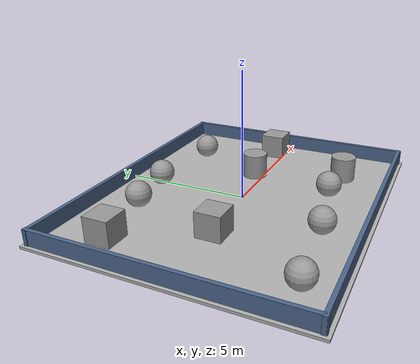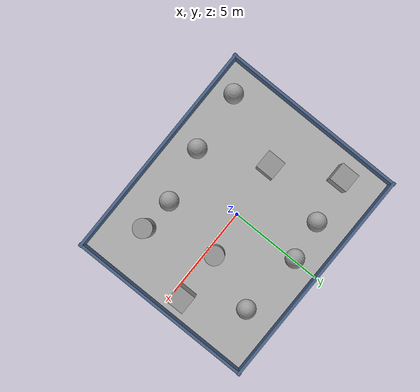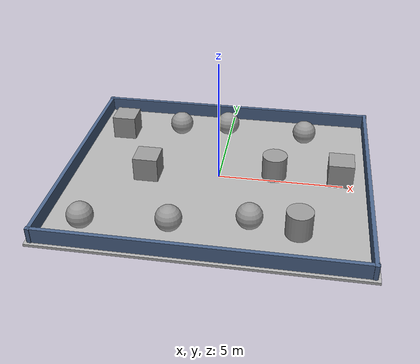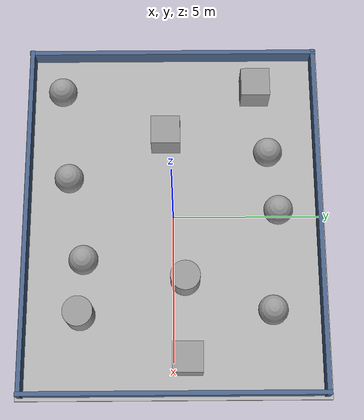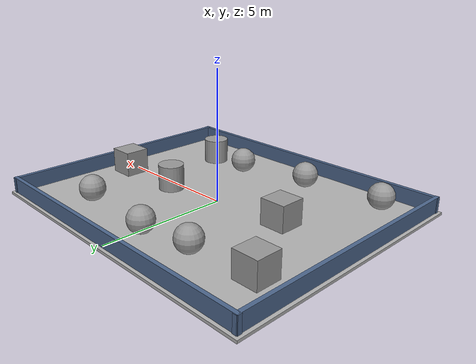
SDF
<sdf version="1.7">
 <world name="v550_custom">
  <gravity>0 0 -9.8</gravity>
  <physics type="ode">
   <max_step_size>0.001</max_step_size>
   <real_time_update_rate>1000</real_time_update_rate>
   <real_time_factor>1</real_time_factor>
  </physics>
  <scene><ambient>0.7 0.7 0.7 1</ambient><background>0.8 0.8 0.85 1</background><shadows>0</shadows></scene>
  <light name="sun" type="directional">
   <pose>0 0 10 0 -0 0</pose>
   <diffuse>0.9 0.9 0.9 1</diffuse>
   <specular>0.1 0.1 0.1 1</specular>
   <direction>-0.2 0.1 -1</direction>
   <cast_shadows>0</cast_shadows>
   <attenuation><range>10</range></attenuation>
   <spot><inner_angle>0</inner_angle><outer_angle>0</outer_angle><falloff>0</falloff></spot>
  </light>
  <model name="floor">
   <static>1</static>
   <pose>0 0 -0.05 0 -0 0</pose>
   <link name="link">
    <collision name="collision"><geometry><box><size>12.4 10.4 0.1</size></box></geometry></collision>
    <visual name="visual">
     <geometry><box><size>12.4 10.4 0.1</size></box></geometry>
     <material><ambient>0.65 0.65 0.65 1</ambient><diffuse>0.7 0.7 0.7 1</diffuse></material>
    </visual>
   </link>
  </model>
  <model name="wall_north">
   <static>1</static>
   <pose>0 5 0.3 0 -0 0</pose>
   <link name="link">
    <collision name="collision"><geometry><box><size>12.2 0.15 0.6</size></box></geometry></collision>
    <visual name="visual">
     <geometry><box><size>12.2 0.15 0.6</size></box></geometry>
     <material><ambient>0.3 0.4 0.55 1</ambient><diffuse>0.3 0.4 0.55 1</diffuse></material>
    </visual>
   </link>
  </model>
  <model name="wall_south">
   <static>1</static>
   <pose>0 -5 0.3 0 -0 0</pose>
   <link name="link">
    <collision name="collision"><geometry><box><size>12.2 0.15 0.6</size></box></geometry></collision>
    <visual name="visual">
     <geometry><box><size>12.2 0.15 0.6</size></box></geometry>
     <material><ambient>0.3 0.4 0.55 1</ambient><diffuse>0.3 0.4 0.55 1</diffuse></material>
    </visual>
   </link>
  </model>
  <model name="wall_east">
   <static>1</static>
   <pose>6 0 0.3 0 -0 0</pose>
   <link name="link">
    <collision name="collision"><geometry><box><size>0.15 10.2 0.6</size></box></geometry></collision>
    <visual name="visual">
     <geometry><box><size>0.15 10.2 0.6</size></box></geometry>
     <material><ambient>0.3 0.4 0.55 1</ambient><diffuse>0.3 0.4 0.55 1</diffuse></material>
    </visual>
   </link>
  </model>
  <model name="wall_west">
   <static>1</static>
   <pose>-6 0 0.3 0 -0 0</pose>
   <link name="link">
    <collision name="collision"><geometry><box><size>0.15 10.2 0.6</size></box></geometry></collision>
    <visual name="visual">
     <geometry><box><size>0.15 10.2 0.6</size></box></geometry>
     <material><ambient>0.3 0.4 0.55 1</ambient><diffuse>0.3 0.4 0.55 1</diffuse></material>
    </visual>
   </link>
  </model>
  <magnetic_field>6e-06 2.3e-05 -4.2e-05</magnetic_field>
  <atmosphere type="adiabatic"/>
  <audio><device>default</device></audio>
  <spherical_coordinates>
   <surface_model>EARTH_WGS84</surface_model>
   <latitude_deg>0</latitude_deg>
   <longitude_deg>0</longitude_deg>
   <elevation>0</elevation>
   <heading_deg>0</heading_deg>
  </spherical_coordinates>
  <model name="unit_cylinder">
   <pose>2.23343 0.399925 0.49999 -0 -0 -7.4e-05</pose>
   <link name="link">
    <inertial>
     <mass>1</mass>
     <inertia><ixx>0.145833</ixx><ixy>0</ixy><ixz>0</ixz><iyy>0.145833</iyy><iyz>0</iyz><izz>0.125</izz></inertia>
    </inertial>
    <collision name="collision">
     <geometry><cylinder><radius>0.5</radius><length>1</length></cylinder></geometry>
    </collision>
    <visual name="visual">
     <geometry><cylinder><radius>0.5</radius><length>1</length></cylinder></geometry>
     <material>
      <script><name>Gazebo/Grey</name><uri>file://media/materials/scripts/gazebo.material</uri></script>
     </material>
    </visual>
   </link>
  </model>
  <model name="unit_box">
   <pose>-2.88334 -0.25325 0.5 -0 -0 -0</pose>
   <link name="link">
    <inertial>
     <mass>1</mass>
     <inertia>
      <ixx>0.166667</ixx>
      <ixy>0</ixy>
      <ixz>0</ixz>
      <iyy>0.166667</iyy>
      <iyz>0</iyz>
      <izz>0.166667</izz>
     </inertia>
    </inertial>
    <collision name="collision"><geometry><box><size>1 1 1</size></box></geometry></collision>
    <visual name="visual">
     <geometry><box><size>1 1 1</size></box></geometry>
     <material>
      <script><name>Gazebo/Grey</name><uri>file://media/materials/scripts/gazebo.material</uri></script>
     </material>
    </visual>
   </link>
  </model>
  <model name="unit_sphere">
   <pose>-2.19903 3.27716 0.5 0 -0 0</pose>
   <link name="link">
    <inertial>
     <mass>1</mass>
     <inertia><ixx>0.1</ixx><ixy>0</ixy><ixz>0</ixz><iyy>0.1</iyy><iyz>0</iyz><izz>0.1</izz></inertia>
    </inertial>
    <collision name="collision"><geometry><sphere><radius>0.5</radius></sphere></geometry></collision>
    <visual name="visual">
     <geometry><sphere><radius>0.5</radius></sphere></geometry>
     <material>
      <script><name>Gazebo/Grey</name><uri>file://media/materials/scripts/gazebo.material</uri></script>
     </material>
    </visual>
   </link>
  </model>
  <model name="unit_sphere_0">
   <pose>3.32207 3.29247 0.5 0 -0 0</pose>
   <link name="link">
    <inertial>
     <mass>1</mass>
     <inertia><ixx>0.1</ixx><ixy>0</ixy><ixz>0</ixz><iyy>0.1</iyy><iyz>0</iyz><izz>0.1</izz></inertia>
    </inertial>
    <collision name="collision"><geometry><sphere><radius>0.5</radius></sphere></geometry></collision>
    <visual name="visual">
     <geometry><sphere><radius>0.5</radius></sphere></geometry>
     <material>
      <script><name>Gazebo/Grey</name><uri>file://media/materials/scripts/gazebo.material</uri></script>
     </material>
    </visual>
   </link>
  </model>
  <model name="unit_sphere_1">
   <pose>-1.28144 -3.56599 0.5 0 -0 0</pose>
   <link name="link">
    <inertial>
     <mass>1</mass>
     <inertia><ixx>0.1</ixx><ixy>0</ixy><ixz>0</ixz><iyy>0.1</iyy><iyz>0</iyz><izz>0.1</izz></inertia>
    </inertial>
    <collision name="collision"><geometry><sphere><radius>0.5</radius></sphere></geometry></collision>
    <visual name="visual">
     <geometry><sphere><radius>0.5</radius></sphere></geometry>
     <material>
      <script><name>Gazebo/Grey</name><uri>file://media/materials/scripts/gazebo.material</uri></script>
     </material>
    </visual>
   </link>
  </model>
  <model name="unit_cylinder_0">
   <pose>3.39982 -3.11476 0.500004 2e-06 7e-06 -8e-05</pose>
   <link name="link">
    <inertial>
     <mass>1</mass>
     <inertia><ixx>0.145833</ixx><ixy>0</ixy><ixz>0</ixz><iyy>0.145833</iyy><iyz>0</iyz><izz>0.125</izz></inertia>
    </inertial>
    <collision name="collision">
     <geometry><cylinder><radius>0.5</radius><length>1</length></cylinder></geometry>
    </collision>
    <visual name="visual">
     <geometry><cylinder><radius>0.5</radius><length>1</length></cylinder></geometry>
     <material>
      <script><name>Gazebo/Grey</name><uri>file://media/materials/scripts/gazebo.material</uri></script>
     </material>
    </visual>
   </link>
  </model>
  <model name="unit_box_0">
   <pose>-4.65631 2.88833 0.5 -0 -0 -0</pose>
   <link name="link">
    <inertial>
     <mass>1</mass>
     <inertia>
      <ixx>0.166667</ixx>
      <ixy>0</ixy>
      <ixz>0</ixz>
      <iyy>0.166667</iyy>
      <iyz>0</iyz>
      <izz>0.166667</izz>
     </inertia>
    </inertial>
    <collision name="collision"><geometry><box><size>1 1 1</size></box></geometry></collision>
    <visual name="visual">
     <geometry><box><size>1 1 1</size></box></geometry>
     <material>
      <script><name>Gazebo/Grey</name><uri>file://media/materials/scripts/gazebo.material</uri></script>
     </material>
    </visual>
   </link>
  </model>
  <model name="unit_sphere_2">
   <pose>-4.50082 -3.87701 0.5 0 -0 0</pose>
   <link name="link">
    <inertial>
     <mass>1</mass>
     <inertia><ixx>0.1</ixx><ixy>0</ixy><ixz>0</ixz><iyy>0.1</iyy><iyz>0</iyz><izz>0.1</izz></inertia>
    </inertial>
    <collision name="collision"><geometry><sphere><radius>0.5</radius></sphere></geometry></collision>
    <visual name="visual">
     <geometry><sphere><radius>0.5</radius></sphere></geometry>
     <material>
      <script><name>Gazebo/Grey</name><uri>file://media/materials/scripts/gazebo.material</uri></script>
     </material>
    </visual>
   </link>
  </model>
  <model name="unit_box_1">
   <pose>4.89286 0.462269 0.5 -0 -0 -0</pose>
   <link name="link">
    <inertial>
     <mass>1</mass>
     <inertia>
      <ixx>0.166667</ixx>
      <ixy>0</ixy>
      <ixz>0</ixz>
      <iyy>0.166667</iyy>
      <iyz>0</iyz>
      <izz>0.166667</izz>
     </inertia>
    </inertial>
    <collision name="collision"><geometry><box><size>1 1 1</size></box></geometry></collision>
    <visual name="visual">
     <geometry><box><size>1 1 1</size></box></geometry>
     <material>
      <script><name>Gazebo/Grey</name><uri>file://media/materials/scripts/gazebo.material</uri></script>
     </material>
    </visual>
   </link>
  </model>
  <model name="unit_sphere_3">
   <pose>-0.115015 3.57279 0.5 0 -0 0</pose>
   <link name="link">
    <inertial>
     <mass>1</mass>
     <inertia><ixx>0.1</ixx><ixy>0</ixy><ixz>0</ixz><iyy>0.1</iyy><iyz>0</iyz><izz>0.1</izz></inertia>
    </inertial>
    <collision name="collision"><geometry><sphere><radius>0.5</radius></sphere></geometry></collision>
    <visual name="visual">
     <geometry><sphere><radius>0.5</radius></sphere></geometry>
     <material>
      <script><name>Gazebo/Grey</name><uri>file://media/materials/scripts/gazebo.material</uri></script>
     </material>
    </visual>
   </link>
  </model>
  <model name="unit_sphere_4">
   <pose>1.59575 -3.00589 0.5 0 -0 0</pose>
   <link name="link">
    <inertial>
     <mass>1</mass>
     <inertia><ixx>0.1</ixx><ixy>0</ixy><ixz>0</ixz><iyy>0.1</iyy><iyz>0</iyz><izz>0.1</izz></inertia>
    </inertial>
    <collision name="collision"><geometry><sphere><radius>0.5</radius></sphere></geometry></collision>
    <visual name="visual">
     <geometry><sphere><radius>0.5</radius></sphere></geometry>
     <material>
      <script><name>Gazebo/Grey</name><uri>file://media/materials/scripts/gazebo.material</uri></script>
     </material>
    </visual>
   </link>
  </model>
  <light name="user_directional_light_0" type="directional">
   <pose>4.35836 3.33638 1 0 -0 0</pose>
   <diffuse>0.5 0.5 0.5 1</diffuse>
   <specular>0.1 0.1 0.1 1</specular>
   <direction>0.1 0.1 -0.9</direction>
   <attenuation>
    <range>20</range>
    <constant>0.5</constant>
    <linear>0.01</linear>
    <quadratic>0.001</quadratic>
   </attenuation>
  </light>
 </world>
</sdf>
